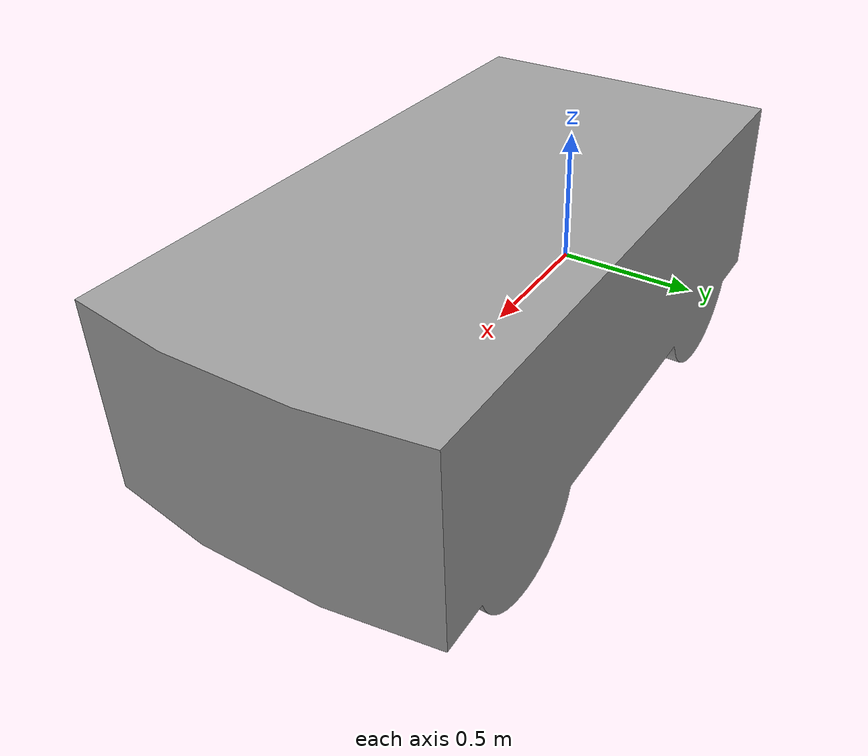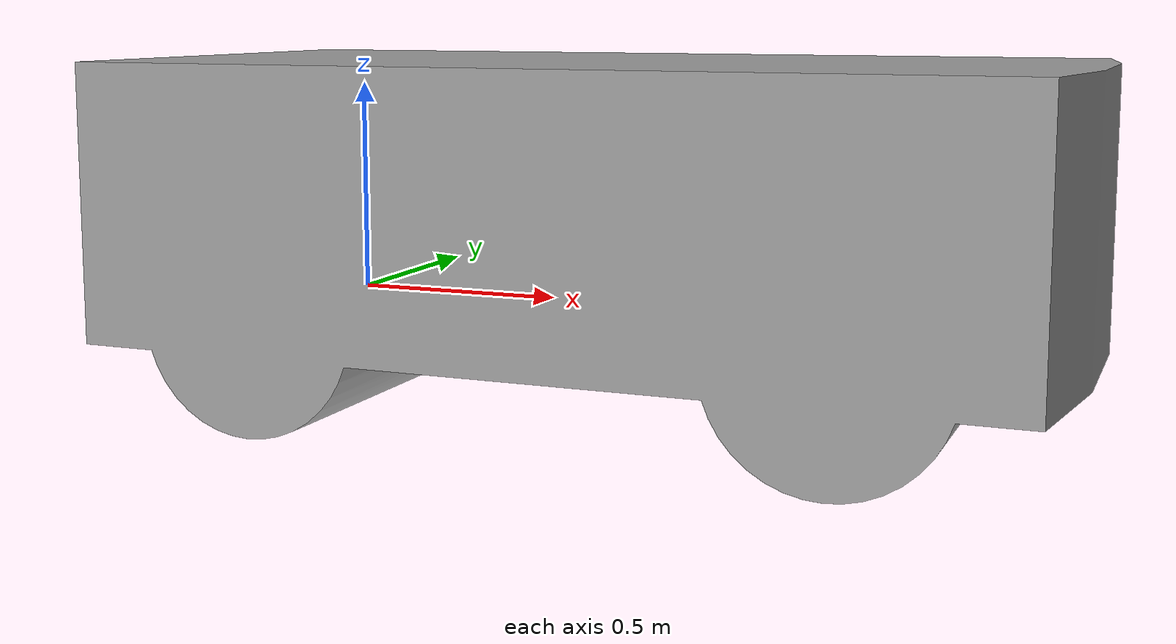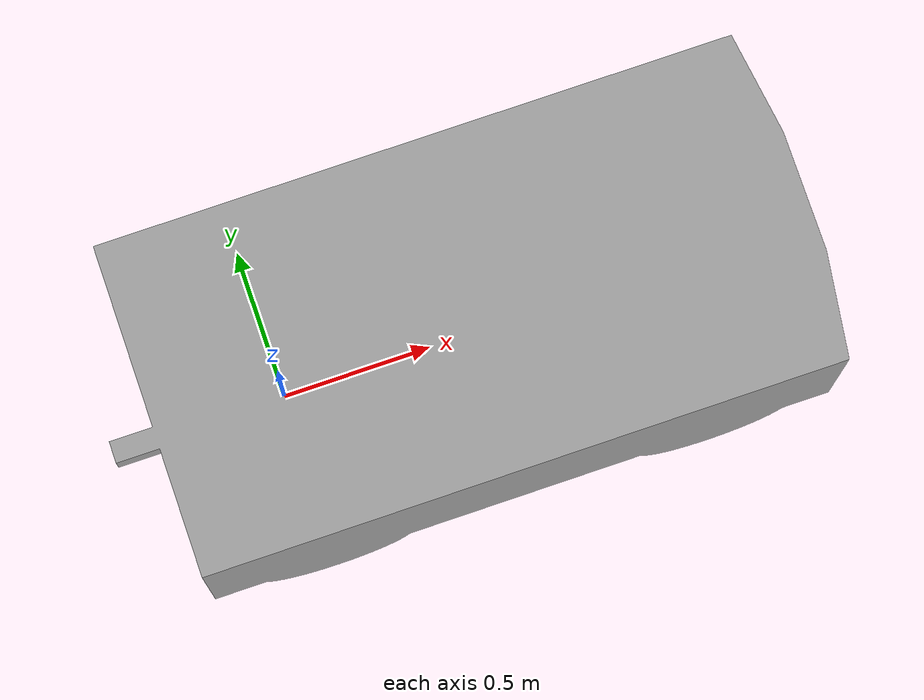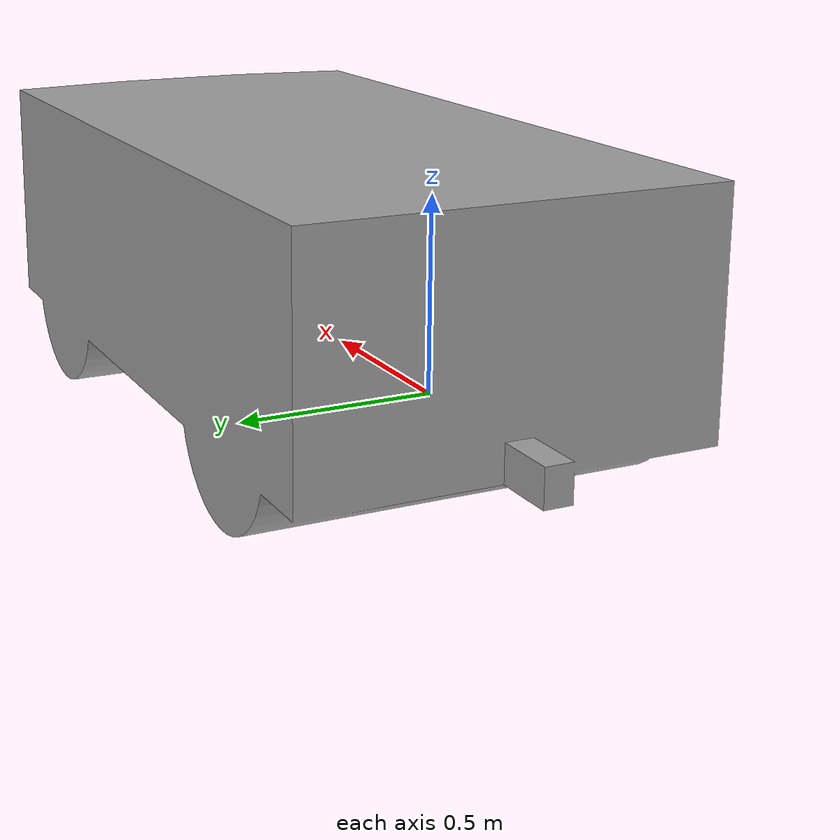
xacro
<?xml version="1.0"?>
<robot name="vehicle" xmlns:xacro="http://ros.org/wiki/xacro">

  <!-- load parameter -->
  <xacro:property name="vehicle_info" value="${load_yaml('$(find racing_kart_description)/config/vehicle_info.param.yaml')}"/>

  <!-- vehicle body -->
  <link name="base_link">
    <visual>
      <origin xyz="0 0 0" rpy="0 0 0"/>
      <geometry>
        <mesh filename="package://racing_kart_description/mesh/square.dae" scale="1 1 1"/>
      </geometry>
    </visual>
  </link>

</robot>
